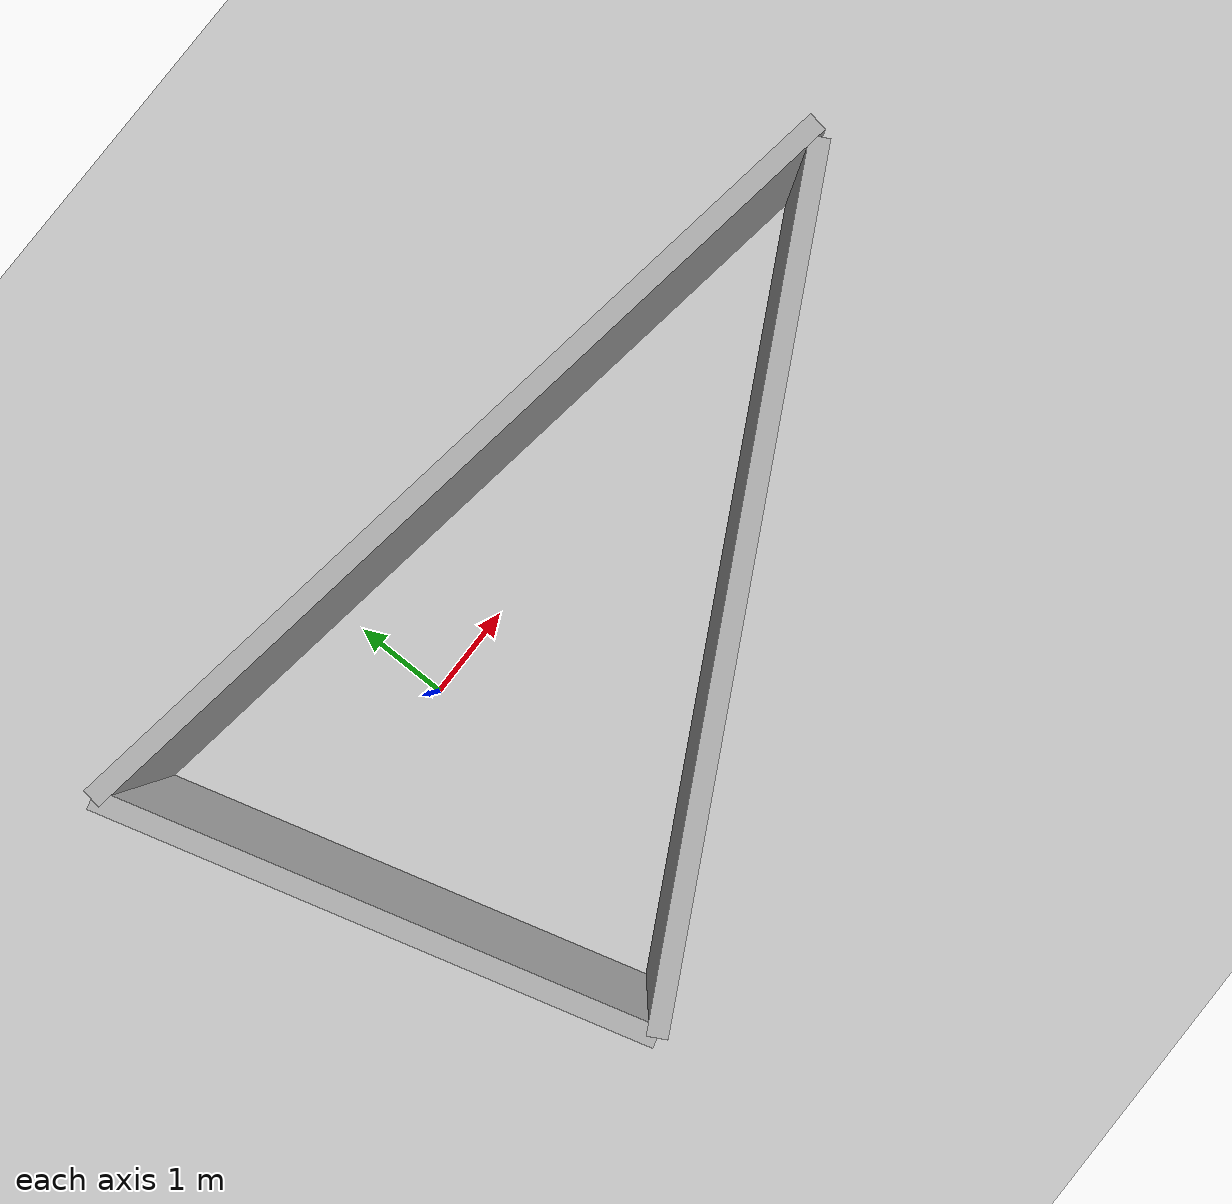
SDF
<?xml version='1.0' encoding='utf-8'?>
<sdf version="1.8">
  <world name="sdg">
    <physics name="1ms" type="ode">
      <max_step_size>0.001</max_step_size>
      <real_time_factor>1</real_time_factor>
      <real_time_update_rate>1000</real_time_update_rate>
    </physics>
    <plugin name="ignition::gazebo::systems::Physics" filename="ignition-gazebo-physics-system" />
    <plugin name="ignition::gazebo::systems::UserCommands" filename="ignition-gazebo-user-commands-system" />
    <plugin name="ignition::gazebo::systems::SceneBroadcaster" filename="ignition-gazebo-scene-broadcaster-system" />
    <plugin name="ignition::gazebo::systems::Contact" filename="ignition-gazebo-contact-system" />
    <plugin name="ignition::gazebo::systems::Sensors" filename="ignition-gazebo-sensors-system">
      <render_engine>ogre2</render_engine>
    </plugin>
    <gravity>0 0 -9.8</gravity>
    <magnetic_field>6e-06 2.3e-05 -4.2e-05</magnetic_field>
    <atmosphere type="adiabatic" />
    <scene>
      <ambient>0.4 0.4 0.4 1</ambient>
      <background>0.7 0.7 0.7 1</background>
      <shadows>true</shadows>
    </scene>
    <model name="ground_plane">
      <static>true</static>
      <link name="link">
        <collision name="collision">
          <geometry>
            <plane>
              <normal>0 0 1</normal>
              <size>100 100</size>
            </plane>
          </geometry>
          <surface>
            <friction>
              <ode />
            </friction>
            <bounce />
            <contact />
          </surface>
        </collision>
        <visual name="visual">
          <geometry>
            <plane>
              <normal>0 0 1</normal>
              <size>100 100</size>
            </plane>
          </geometry>
          <material>
            <ambient>0.8 0.8 0.8 1</ambient>
            <diffuse>0.8 0.8 0.8 1</diffuse>
            <specular>0.8 0.8 0.8 1</specular>
          </material>
        </visual>
        <pose>0 0 0 0 0 0</pose>
        <inertial>
          <pose>0 0 0 0 0 0</pose>
          <mass>1</mass>
          <inertia>
            <ixx>1</ixx>
            <ixy>0</ixy>
            <ixz>0</ixz>
            <iyy>1</iyy>
            <iyz>0</iyz>
            <izz>1</izz>
          </inertia>
        </inertial>
        <enable_wind>false</enable_wind>
      </link>
      <pose>0 0 0 0 0 0</pose>
      <self_collide>false</self_collide>
    </model>
    <light name="sun" type="directional">
      <pose>0 0 10 0 0 0</pose>
      <cast_shadows>true</cast_shadows>
      <intensity>1</intensity>
      <direction>-0.5 0.1 -0.9</direction>
      <diffuse>0.8 0.8 0.8 1</diffuse>
      <specular>0.2 0.2 0.2 1</specular>
      <attenuation>
        <range>1000</range>
        <linear>0.01</linear>
        <constant>0.9</constant>
        <quadratic>0.001</quadratic>
      </attenuation>
      <spot>
        <inner_angle>0</inner_angle>
        <outer_angle>0</outer_angle>
        <falloff>0</falloff>
      </spot>
    </light>
  <model name="wall_1"><static>true</static><pose>1.950 1.050 0.750 0 0 -0.145</pose><link name="link"><collision name="collision"><geometry><box><size>8.994 0.200 1.500</size></box></geometry></collision><visual name="visual"><geometry><box><size>8.994 0.200 1.500</size></box></geometry><material><ambient>0.7 0.7 0.7 1</ambient><diffuse>0.7 0.7 0.7 1</diffuse></material></visual></link></model><model name="wall_2"><static>true</static><pose>2.650 -1.650 0.750 0 0 -2.651</pose><link name="link"><collision name="collision"><geometry><box><size>8.276 0.200 1.500</size></box></geometry></collision><visual name="visual"><geometry><box><size>8.276 0.200 1.500</size></box></geometry><material><ambient>0.7 0.7 0.7 1</ambient><diffuse>0.7 0.7 0.7 1</diffuse></material></visual></link></model><model name="wall_3"><static>true</static><pose>-1.750 -0.950 0.750 0 0 -1.295</pose><link name="link"><collision name="collision"><geometry><box><size>5.508 0.200 1.500</size></box></geometry></collision><visual name="visual"><geometry><box><size>5.508 0.200 1.500</size></box></geometry><material><ambient>0.7 0.7 0.7 1</ambient><diffuse>0.7 0.7 0.7 1</diffuse></material></visual></link></model></world>
</sdf>
